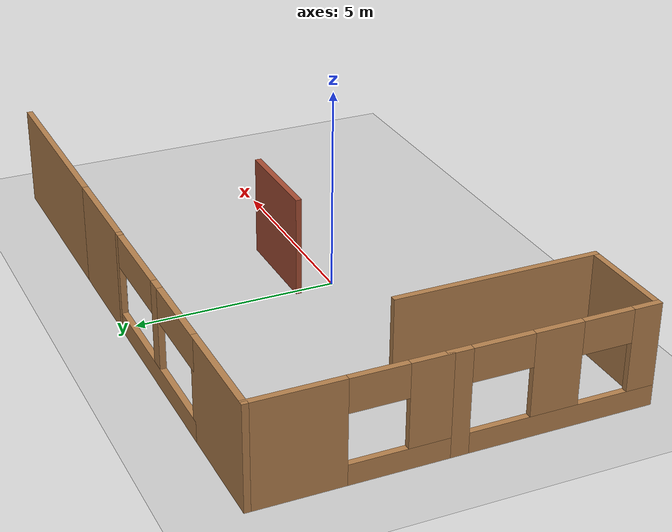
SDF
<sdf version="1.7">
 <world name="simple_house">
  <model name="ground_plane">
   <static>1</static>
   <link name="link">
    <collision name="collision">
     <geometry><plane><normal>0 0 1</normal><size>100 100</size></plane></geometry>
     <surface><friction><ode><mu>100</mu><mu2>50</mu2></ode></friction></surface>
    </collision>
    <visual name="visual">
     <cast_shadows>0</cast_shadows>
     <geometry><plane><normal>0 0 1</normal><size>100 100</size></plane></geometry>
     <material>
      <script><uri>file://media/materials/scripts/gazebo.material</uri><name>Gazebo/Grey</name></script>
     </material>
    </visual>
   </link>
  </model>
  <model name="Wall_81">
   <static>1</static>
   <link name="Wall_81_link">
    <pose>5.07752 5.2688 0 0 -0 3.14159</pose>
    <visual name="Wall_81_Visual">
     <pose>0 0 1.25 0 -0 0</pose>
     <geometry><box><size>5 0.15 2.5</size></box></geometry>
     <material>
      <script><uri>file://media/materials/scripts/gazebo.material</uri><name>Gazebo/Wood</name></script>
      <ambient>1 1 1 1</ambient>
      <diffuse>1 1 1 1</diffuse>
      <specular>0.2 0.2 0.2 1</specular>
      <emissive>0 0 0 1</emissive>
     </material>
    </visual>
    <collision name="Wall_81_Collision">
     <pose>0 0 1.25 0 -0 0</pose>
     <geometry><box><size>5 0.15 2.5</size></box></geometry>
     <surface>
      <friction>
       <ode><mu>1</mu><mu2>1</mu2><fdir1>0 0 0</fdir1><slip1>0</slip1><slip2>0</slip2></ode>
       <torsional>
        <coefficient>1</coefficient>
        <patch_radius>0</patch_radius>
        <surface_radius>0</surface_radius>
        <use_patch_radius>1</use_patch_radius>
        <ode><slip>0</slip></ode>
       </torsional>
      </friction>
      <bounce><restitution_coefficient>0</restitution_coefficient><threshold>1e+06</threshold></bounce>
      <contact>
       <collide_without_contact>0</collide_without_contact>
       <collide_without_contact_bitmask>1</collide_without_contact_bitmask>
       <collide_bitmask>1</collide_bitmask>
       <ode>
        <soft_cfm>0</soft_cfm>
        <soft_erp>0.2</soft_erp>
        <kp>1e+13</kp>
        <kd>1</kd>
        <max_vel>0.01</max_vel>
        <min_depth>0</min_depth>
       </ode>
       <bullet>
        <split_impulse>1</split_impulse>
        <split_impulse_penetration_threshold>-0.01</split_impulse_penetration_threshold>
        <soft_cfm>0</soft_cfm>
        <soft_erp>0.2</soft_erp>
        <kp>1e+13</kp>
        <kd>1</kd>
       </bullet>
      </contact>
     </surface>
    </collision>
   </link>
  </model>
  <model name="Wall_82">
   <static>1</static>
   <link name="Wall_82_link">
    <pose>1.25 5.26876 0 0 -0 3.14159</pose>
    <visual name="Wall_82_Visual">
     <pose>0 0 1.25 0 -0 0</pose>
     <geometry><box><size>2.75 0.15 2.5</size></box></geometry>
     <material>
      <script><uri>file://media/materials/scripts/gazebo.material</uri><name>Gazebo/Wood</name></script>
      <ambient>1 1 1 1</ambient>
      <diffuse>1 1 1 1</diffuse>
      <specular>0.2 0.2 0.2 1</specular>
      <emissive>0 0 0 1</emissive>
     </material>
    </visual>
    <collision name="Wall_82_Collision">
     <pose>0 0 1.25 0 -0 0</pose>
     <geometry><box><size>2.75 0.15 2.5</size></box></geometry>
     <surface>
      <friction>
       <ode><mu>1</mu><mu2>1</mu2><fdir1>0 0 0</fdir1><slip1>0</slip1><slip2>0</slip2></ode>
       <torsional>
        <coefficient>1</coefficient>
        <patch_radius>0</patch_radius>
        <surface_radius>0</surface_radius>
        <use_patch_radius>1</use_patch_radius>
        <ode><slip>0</slip></ode>
       </torsional>
      </friction>
      <bounce><restitution_coefficient>0</restitution_coefficient><threshold>1e+06</threshold></bounce>
      <contact>
       <collide_without_contact>0</collide_without_contact>
       <collide_without_contact_bitmask>1</collide_without_contact_bitmask>
       <collide_bitmask>1</collide_bitmask>
       <ode>
        <soft_cfm>0</soft_cfm>
        <soft_erp>0.2</soft_erp>
        <kp>1e+13</kp>
        <kd>1</kd>
        <max_vel>0.01</max_vel>
        <min_depth>0</min_depth>
       </ode>
       <bullet>
        <split_impulse>1</split_impulse>
        <split_impulse_penetration_threshold>-0.01</split_impulse_penetration_threshold>
        <soft_cfm>0</soft_cfm>
        <soft_erp>0.2</soft_erp>
        <kp>1e+13</kp>
        <kd>1</kd>
       </bullet>
      </contact>
     </surface>
    </collision>
   </link>
  </model>
  <model name="Wall_83">
   <static>1</static>
   <link name="Wall_83_link">
    <pose>-2.475 5.275 0 0 -0 3.14159</pose>
    <visual name="Wall_83_Visual_2">
     <pose>0.110246 0 1.5 0 -0 0</pose>
     <geometry><box><size>0.37052 0.15 2</size></box></geometry>
     <material>
      <script><uri>file://media/materials/scripts/gazebo.material</uri><name>Gazebo/Wood</name></script>
      <ambient>1 1 1 1</ambient>
      <diffuse>1 1 1 1</diffuse>
      <specular>0.2 0.2 0.2 1</specular>
      <emissive>0 0 0 1</emissive>
     </material>
    </visual>
    <visual name="Wall_83_Visual_6">
     <pose>1.39775 0 2.1 0 -0 0</pose>
     <geometry><box><size>2.20449 0.15 0.8</size></box></geometry>
     <material>
      <script><uri>file://media/materials/scripts/gazebo.material</uri><name>Gazebo/Wood</name></script>
      <ambient>1 1 1 1</ambient>
      <diffuse>1 1 1 1</diffuse>
      <specular>0.2 0.2 0.2 1</specular>
      <emissive>0 0 0 1</emissive>
     </material>
    </visual>
    <visual name="Wall_83_Visual_3">
     <pose>0.110246 0 1.5 0 -0 0</pose>
     <geometry><box><size>0.37052 0.15 2</size></box></geometry>
     <material>
      <script><uri>file://media/materials/scripts/gazebo.material</uri><name>Gazebo/Wood</name></script>
      <ambient>1 1 1 1</ambient>
      <diffuse>1 1 1 1</diffuse>
      <specular>0.2 0.2 0.2 1</specular>
      <emissive>0 0 0 1</emissive>
     </material>
    </visual>
    <visual name="Wall_83_Visual_1">
     <pose>0.080993 0 0.25 0 -0 0</pose>
     <geometry><box><size>4.83801 0.15 0.5</size></box></geometry>
     <material>
      <script><uri>file://media/materials/scripts/gazebo.material</uri><name>Gazebo/Wood</name></script>
      <ambient>1 1 1 1</ambient>
      <diffuse>1 1 1 1</diffuse>
      <specular>0.2 0.2 0.2 1</specular>
      <emissive>0 0 0 1</emissive>
     </material>
    </visual>
    <visual name="Wall_83_Visual_4">
     <pose>-1.20651 0 2.1 0 -0 0</pose>
     <geometry><box><size>2.263 0.15 0.8</size></box></geometry>
     <material>
      <script><uri>file://media/materials/scripts/gazebo.material</uri><name>Gazebo/Wood</name></script>
      <ambient>1 1 1 1</ambient>
      <diffuse>1 1 1 1</diffuse>
      <specular>0.2 0.2 0.2 1</specular>
      <emissive>0 0 0 1</emissive>
     </material>
    </visual>
    <visual name="Wall_83_Visual_5">
     <pose>1.39775 0 2.1 0 -0 0</pose>
     <geometry><box><size>2.20449 0.15 0.8</size></box></geometry>
     <material>
      <script><uri>file://media/materials/scripts/gazebo.material</uri><name>Gazebo/Wood</name></script>
      <ambient>1 1 1 1</ambient>
      <diffuse>1 1 1 1</diffuse>
      <specular>0.2 0.2 0.2 1</specular>
      <emissive>0 0 0 1</emissive>
     </material>
    </visual>
    <visual name="Wall_83_Visual_0">
     <pose>-2.41901 0 1.25 0 -0 0</pose>
     <geometry><box><size>0.161986 0.15 2.5</size></box></geometry>
     <material>
      <script><uri>file://media/materials/scripts/gazebo.material</uri><name>Gazebo/Wood</name></script>
      <ambient>1 1 1 1</ambient>
      <diffuse>1 1 1 1</diffuse>
      <specular>0.2 0.2 0.2 1</specular>
      <emissive>0 0 0 1</emissive>
     </material>
    </visual>
    <collision name="Wall_83_Collision_4">
     <pose>-1.20651 0 2.1 0 -0 0</pose>
     <geometry><box><size>2.263 0.15 0.8</size></box></geometry>
     <surface>
      <friction>
       <ode><mu>1</mu><mu2>1</mu2><fdir1>0 0 0</fdir1><slip1>0</slip1><slip2>0</slip2></ode>
       <torsional>
        <coefficient>1</coefficient>
        <patch_radius>0</patch_radius>
        <surface_radius>0</surface_radius>
        <use_patch_radius>1</use_patch_radius>
        <ode><slip>0</slip></ode>
       </torsional>
      </friction>
      <bounce><restitution_coefficient>0</restitution_coefficient><threshold>1e+06</threshold></bounce>
      <contact>
       <collide_without_contact>0</collide_without_contact>
       <collide_without_contact_bitmask>1</collide_without_contact_bitmask>
       <collide_bitmask>1</collide_bitmask>
       <ode>
        <soft_cfm>0</soft_cfm>
        <soft_erp>0.2</soft_erp>
        <kp>1e+13</kp>
        <kd>1</kd>
        <max_vel>0.01</max_vel>
        <min_depth>0</min_depth>
       </ode>
       <bullet>
        <split_impulse>1</split_impulse>
        <split_impulse_penetration_threshold>-0.01</split_impulse_penetration_threshold>
        <soft_cfm>0</soft_cfm>
        <soft_erp>0.2</soft_erp>
        <kp>1e+13</kp>
        <kd>1</kd>
       </bullet>
      </contact>
     </surface>
    </collision>
    <collision name="Wall_83_Collision_2">
     <pose>0.110246 0 1.5 0 -0 0</pose>
     <geometry><box><size>0.37052 0.15 2</size></box></geometry>
     <surface>
      <friction>
       <ode><mu>1</mu><mu2>1</mu2><fdir1>0 0 0</fdir1><slip1>0</slip1><slip2>0</slip2></ode>
       <torsional>
        <coefficient>1</coefficient>
        <patch_radius>0</patch_radius>
        <surface_radius>0</surface_radius>
        <use_patch_radius>1</use_patch_radius>
        <ode><slip>0</slip></ode>
       </torsional>
      </friction>
      <bounce><restitution_coefficient>0</restitution_coefficient><threshold>1e+06</threshold></bounce>
      <contact>
       <collide_without_contact>0</collide_without_contact>
       <collide_without_contact_bitmask>1</collide_without_contact_bitmask>
       <collide_bitmask>1</collide_bitmask>
       <ode>
        <soft_cfm>0</soft_cfm>
        <soft_erp>0.2</soft_erp>
        <kp>1e+13</kp>
        <kd>1</kd>
        <max_vel>0.01</max_vel>
        <min_depth>0</min_depth>
       </ode>
       <bullet>
        <split_impulse>1</split_impulse>
        <split_impulse_penetration_threshold>-0.01</split_impulse_penetration_threshold>
        <soft_cfm>0</soft_cfm>
        <soft_erp>0.2</soft_erp>
        <kp>1e+13</kp>
        <kd>1</kd>
       </bullet>
      </contact>
     </surface>
    </collision>
    <collision name="Wall_83_Collision_6">
     <pose>1.39775 0 2.1 0 -0 0</pose>
     <geometry><box><size>2.20449 0.15 0.8</size></box></geometry>
     <surface>
      <friction>
       <ode><mu>1</mu><mu2>1</mu2><fdir1>0 0 0</fdir1><slip1>0</slip1><slip2>0</slip2></ode>
       <torsional>
        <coefficient>1</coefficient>
        <patch_radius>0</patch_radius>
        <surface_radius>0</surface_radius>
        <use_patch_radius>1</use_patch_radius>
        <ode><slip>0</slip></ode>
       </torsional>
      </friction>
      <bounce><restitution_coefficient>0</restitution_coefficient><threshold>1e+06</threshold></bounce>
      <contact>
       <collide_without_contact>0</collide_without_contact>
       <collide_without_contact_bitmask>1</collide_without_contact_bitmask>
       <collide_bitmask>1</collide_bitmask>
       <ode>
        <soft_cfm>0</soft_cfm>
        <soft_erp>0.2</soft_erp>
        <kp>1e+13</kp>
        <kd>1</kd>
        <max_vel>0.01</max_vel>
        <min_depth>0</min_depth>
       </ode>
       <bullet>
        <split_impulse>1</split_impulse>
        <split_impulse_penetration_threshold>-0.01</split_impulse_penetration_threshold>
        <soft_cfm>0</soft_cfm>
        <soft_erp>0.2</soft_erp>
        <kp>1e+13</kp>
        <kd>1</kd>
       </bullet>
      </contact>
     </surface>
    </collision>
    <collision name="Wall_83_Collision_0">
     <pose>-2.41901 0 1.25 0 -0 0</pose>
     <geometry><box><size>0.161986 0.15 2.5</size></box></geometry>
     <surface>
      <friction>
       <ode><mu>1</mu><mu2>1</mu2><fdir1>0 0 0</fdir1><slip1>0</slip1><slip2>0</slip2></ode>
       <torsional>
        <coefficient>1</coefficient>
        <patch_radius>0</patch_radius>
        <surface_radius>0</surface_radius>
        <use_patch_radius>1</use_patch_radius>
        <ode><slip>0</slip></ode>
       </torsional>
      </friction>
      <bounce><restitution_coefficient>0</restitution_coefficient><threshold>1e+06</threshold></bounce>
      <contact>
       <collide_without_contact>0</collide_without_contact>
       <collide_without_contact_bitmask>1</collide_without_contact_bitmask>
       <collide_bitmask>1</collide_bitmask>
       <ode>
        <soft_cfm>0</soft_cfm>
        <soft_erp>0.2</soft_erp>
        <kp>1e+13</kp>
        <kd>1</kd>
        <max_vel>0.01</max_vel>
        <min_depth>0</min_depth>
       </ode>
       <bullet>
        <split_impulse>1</split_impulse>
        <split_impulse_penetration_threshold>-0.01</split_impulse_penetration_threshold>
        <soft_cfm>0</soft_cfm>
        <soft_erp>0.2</soft_erp>
        <kp>1e+13</kp>
        <kd>1</kd>
       </bullet>
      </contact>
     </surface>
    </collision>
    <collision name="Wall_83_Collision_1">
     <pose>0.080993 0 0.25 0 -0 0</pose>
     <geometry><box><size>4.83801 0.15 0.5</size></box></geometry>
     <surface>
      <friction>
       <ode><mu>1</mu><mu2>1</mu2><fdir1>0 0 0</fdir1><slip1>0</slip1><slip2>0</slip2></ode>
       <torsional>
        <coefficient>1</coefficient>
        <patch_radius>0</patch_radius>
        <surface_radius>0</surface_radius>
        <use_patch_radius>1</use_patch_radius>
        <ode><slip>0</slip></ode>
       </torsional>
      </friction>
      <bounce><restitution_coefficient>0</restitution_coefficient><threshold>1e+06</threshold></bounce>
      <contact>
       <collide_without_contact>0</collide_without_contact>
       <collide_without_contact_bitmask>1</collide_without_contact_bitmask>
       <collide_bitmask>1</collide_bitmask>
       <ode>
        <soft_cfm>0</soft_cfm>
        <soft_erp>0.2</soft_erp>
        <kp>1e+13</kp>
        <kd>1</kd>
        <max_vel>0.01</max_vel>
        <min_depth>0</min_depth>
       </ode>
       <bullet>
        <split_impulse>1</split_impulse>
        <split_impulse_penetration_threshold>-0.01</split_impulse_penetration_threshold>
        <soft_cfm>0</soft_cfm>
        <soft_erp>0.2</soft_erp>
        <kp>1e+13</kp>
        <kd>1</kd>
       </bullet>
      </contact>
     </surface>
    </collision>
    <collision name="Wall_83_Collision_3">
     <pose>0.110246 0 1.5 0 -0 0</pose>
     <geometry><box><size>0.37052 0.15 2</size></box></geometry>
     <surface>
      <friction>
       <ode><mu>1</mu><mu2>1</mu2><fdir1>0 0 0</fdir1><slip1>0</slip1><slip2>0</slip2></ode>
       <torsional>
        <coefficient>1</coefficient>
        <patch_radius>0</patch_radius>
        <surface_radius>0</surface_radius>
        <use_patch_radius>1</use_patch_radius>
        <ode><slip>0</slip></ode>
       </torsional>
      </friction>
      <bounce><restitution_coefficient>0</restitution_coefficient><threshold>1e+06</threshold></bounce>
      <contact>
       <collide_without_contact>0</collide_without_contact>
       <collide_without_contact_bitmask>1</collide_without_contact_bitmask>
       <collide_bitmask>1</collide_bitmask>
       <ode>
        <soft_cfm>0</soft_cfm>
        <soft_erp>0.2</soft_erp>
        <kp>1e+13</kp>
        <kd>1</kd>
        <max_vel>0.01</max_vel>
        <min_depth>0</min_depth>
       </ode>
       <bullet>
        <split_impulse>1</split_impulse>
        <split_impulse_penetration_threshold>-0.01</split_impulse_penetration_threshold>
        <soft_cfm>0</soft_cfm>
        <soft_erp>0.2</soft_erp>
        <kp>1e+13</kp>
        <kd>1</kd>
       </bullet>
      </contact>
     </surface>
    </collision>
    <collision name="Wall_83_Collision_5">
     <pose>1.39775 0 2.1 0 -0 0</pose>
     <geometry><box><size>2.20449 0.15 0.8</size></box></geometry>
     <surface>
      <friction>
       <ode><mu>1</mu><mu2>1</mu2><fdir1>0 0 0</fdir1><slip1>0</slip1><slip2>0</slip2></ode>
       <torsional>
        <coefficient>1</coefficient>
        <patch_radius>0</patch_radius>
        <surface_radius>0</surface_radius>
        <use_patch_radius>1</use_patch_radius>
        <ode><slip>0</slip></ode>
       </torsional>
      </friction>
      <bounce><restitution_coefficient>0</restitution_coefficient><threshold>1e+06</threshold></bounce>
      <contact>
       <collide_without_contact>0</collide_without_contact>
       <collide_without_contact_bitmask>1</collide_without_contact_bitmask>
       <collide_bitmask>1</collide_bitmask>
       <ode>
        <soft_cfm>0</soft_cfm>
        <soft_erp>0.2</soft_erp>
        <kp>1e+13</kp>
        <kd>1</kd>
        <max_vel>0.01</max_vel>
        <min_depth>0</min_depth>
       </ode>
       <bullet>
        <split_impulse>1</split_impulse>
        <split_impulse_penetration_threshold>-0.01</split_impulse_penetration_threshold>
        <soft_cfm>0</soft_cfm>
        <soft_erp>0.2</soft_erp>
        <kp>1e+13</kp>
        <kd>1</kd>
       </bullet>
      </contact>
     </surface>
    </collision>
   </link>
  </model>
  <model name="Wall_84">
   <static>1</static>
   <link name="Wall_84_link">
    <pose>-6.2 5.275 0 0 -0 3.14159</pose>
    <visual name="Wall_84_Visual">
     <pose>0 0 1.25 0 -0 0</pose>
     <geometry><box><size>2.75 0.15 2.5</size></box></geometry>
     <material>
      <script><uri>file://media/materials/scripts/gazebo.material</uri><name>Gazebo/Wood</name></script>
      <ambient>1 1 1 1</ambient>
      <diffuse>1 1 1 1</diffuse>
      <specular>0.2 0.2 0.2 1</specular>
      <emissive>0 0 0 1</emissive>
     </material>
    </visual>
    <collision name="Wall_84_Collision">
     <pose>0 0 1.25 0 -0 0</pose>
     <geometry><box><size>2.75 0.15 2.5</size></box></geometry>
     <surface>
      <friction>
       <ode><mu>1</mu><mu2>1</mu2><fdir1>0 0 0</fdir1><slip1>0</slip1><slip2>0</slip2></ode>
       <torsional>
        <coefficient>1</coefficient>
        <patch_radius>0</patch_radius>
        <surface_radius>0</surface_radius>
        <use_patch_radius>1</use_patch_radius>
        <ode><slip>0</slip></ode>
       </torsional>
      </friction>
      <bounce><restitution_coefficient>0</restitution_coefficient><threshold>1e+06</threshold></bounce>
      <contact>
       <collide_without_contact>0</collide_without_contact>
       <collide_without_contact_bitmask>1</collide_without_contact_bitmask>
       <collide_bitmask>1</collide_bitmask>
       <ode>
        <soft_cfm>0</soft_cfm>
        <soft_erp>0.2</soft_erp>
        <kp>1e+13</kp>
        <kd>1</kd>
        <max_vel>0.01</max_vel>
        <min_depth>0</min_depth>
       </ode>
       <bullet>
        <split_impulse>1</split_impulse>
        <split_impulse_penetration_threshold>-0.01</split_impulse_penetration_threshold>
        <soft_cfm>0</soft_cfm>
        <soft_erp>0.2</soft_erp>
        <kp>1e+13</kp>
        <kd>1</kd>
       </bullet>
      </contact>
     </surface>
    </collision>
   </link>
  </model>
  <model name="Wall_85">
   <static>1</static>
   <link name="Wall_85_link">
    <pose>-7.5 3.1 0 0 0 -1.5708</pose>
    <visual name="Wall_85_Visual_3">
     <pose>0.62212 0 2.1 0 -0 0</pose>
     <geometry><box><size>1.332 0.15 0.8</size></box></geometry>
     <material>
      <script><uri>file://media/materials/scripts/gazebo.material</uri><name>Gazebo/Wood</name></script>
      <ambient>1 1 1 1</ambient>
      <diffuse>1 1 1 1</diffuse>
      <specular>0.2 0.2 0.2 1</specular>
      <emissive>0 0 0 1</emissive>
     </material>
    </visual>
    <visual name="Wall_85_Visual_2">
     <pose>1.76906 0 1.5 0 -0 0</pose>
     <geometry><box><size>0.96188 0.15 2</size></box></geometry>
     <material>
      <script><uri>file://media/materials/scripts/gazebo.material</uri><name>Gazebo/Wood</name></script>
      <ambient>1 1 1 1</ambient>
      <diffuse>1 1 1 1</diffuse>
      <specular>0.2 0.2 0.2 1</specular>
      <emissive>0 0 0 1</emissive>
     </material>
    </visual>
    <visual name="Wall_85_Visual_0">
     <pose>-1.14694 0 1.25 0 -0 0</pose>
     <geometry><box><size>2.20612 0.15 2.5</size></box></geometry>
     <material>
      <script><uri>file://media/materials/scripts/gazebo.material</uri><name>Gazebo/Wood</name></script>
      <ambient>1 1 1 1</ambient>
      <diffuse>1 1 1 1</diffuse>
      <specular>0.2 0.2 0.2 1</specular>
      <emissive>0 0 0 1</emissive>
     </material>
    </visual>
    <visual name="Wall_85_Visual_1">
     <pose>1.10306 0 0.25 0 -0 0</pose>
     <geometry><box><size>2.29388 0.15 0.5</size></box></geometry>
     <material>
      <script><uri>file://media/materials/scripts/gazebo.material</uri><name>Gazebo/Wood</name></script>
      <ambient>1 1 1 1</ambient>
      <diffuse>1 1 1 1</diffuse>
      <specular>0.2 0.2 0.2 1</specular>
      <emissive>0 0 0 1</emissive>
     </material>
    </visual>
    <collision name="Wall_85_Collision_3">
     <pose>0.62212 0 2.1 0 -0 0</pose>
     <geometry><box><size>1.332 0.15 0.8</size></box></geometry>
     <surface>
      <friction>
       <ode><mu>1</mu><mu2>1</mu2><fdir1>0 0 0</fdir1><slip1>0</slip1><slip2>0</slip2></ode>
       <torsional>
        <coefficient>1</coefficient>
        <patch_radius>0</patch_radius>
        <surface_radius>0</surface_radius>
        <use_patch_radius>1</use_patch_radius>
        <ode><slip>0</slip></ode>
       </torsional>
      </friction>
      <bounce><restitution_coefficient>0</restitution_coefficient><threshold>1e+06</threshold></bounce>
      <contact>
       <collide_without_contact>0</collide_without_contact>
       <collide_without_contact_bitmask>1</collide_without_contact_bitmask>
       <collide_bitmask>1</collide_bitmask>
       <ode>
        <soft_cfm>0</soft_cfm>
        <soft_erp>0.2</soft_erp>
        <kp>1e+13</kp>
        <kd>1</kd>
        <max_vel>0.01</max_vel>
        <min_depth>0</min_depth>
       </ode>
       <bullet>
        <split_impulse>1</split_impulse>
        <split_impulse_penetration_threshold>-0.01</split_impulse_penetration_threshold>
        <soft_cfm>0</soft_cfm>
        <soft_erp>0.2</soft_erp>
        <kp>1e+13</kp>
        <kd>1</kd>
       </bullet>
      </contact>
     </surface>
    </collision>
    <collision name="Wall_85_Collision_2">
     <pose>1.76906 0 1.5 0 -0 0</pose>
     <geometry><box><size>0.96188 0.15 2</size></box></geometry>
     <surface>
      <friction>
       <ode><mu>1</mu><mu2>1</mu2><fdir1>0 0 0</fdir1><slip1>0</slip1><slip2>0</slip2></ode>
       <torsional>
        <coefficient>1</coefficient>
        <patch_radius>0</patch_radius>
        <surface_radius>0</surface_radius>
        <use_patch_radius>1</use_patch_radius>
        <ode><slip>0</slip></ode>
       </torsional>
      </friction>
      <bounce><restitution_coefficient>0</restitution_coefficient><threshold>1e+06</threshold></bounce>
      <contact>
       <collide_without_contact>0</collide_without_contact>
       <collide_without_contact_bitmask>1</collide_without_contact_bitmask>
       <collide_bitmask>1</collide_bitmask>
       <ode>
        <soft_cfm>0</soft_cfm>
        <soft_erp>0.2</soft_erp>
        <kp>1e+13</kp>
        <kd>1</kd>
        <max_vel>0.01</max_vel>
        <min_depth>0</min_depth>
       </ode>
       <bullet>
        <split_impulse>1</split_impulse>
        <split_impulse_penetration_threshold>-0.01</split_impulse_penetration_threshold>
        <soft_cfm>0</soft_cfm>
        <soft_erp>0.2</soft_erp>
        <kp>1e+13</kp>
        <kd>1</kd>
       </bullet>
      </contact>
     </surface>
    </collision>
    <collision name="Wall_85_Collision_1">
     <pose>1.10306 0 0.25 0 -0 0</pose>
     <geometry><box><size>2.29388 0.15 0.5</size></box></geometry>
     <surface>
      <friction>
       <ode><mu>1</mu><mu2>1</mu2><fdir1>0 0 0</fdir1><slip1>0</slip1><slip2>0</slip2></ode>
       <torsional>
        <coefficient>1</coefficient>
        <patch_radius>0</patch_radius>
        <surface_radius>0</surface_radius>
        <use_patch_radius>1</use_patch_radius>
        <ode><slip>0</slip></ode>
       </torsional>
      </friction>
      <bounce><restitution_coefficient>0</restitution_coefficient><threshold>1e+06</threshold></bounce>
      <contact>
       <collide_without_contact>0</collide_without_contact>
       <collide_without_contact_bitmask>1</collide_without_contact_bitmask>
       <collide_bitmask>1</collide_bitmask>
       <ode>
        <soft_cfm>0</soft_cfm>
        <soft_erp>0.2</soft_erp>
        <kp>1e+13</kp>
        <kd>1</kd>
        <max_vel>0.01</max_vel>
        <min_depth>0</min_depth>
       </ode>
       <bullet>
        <split_impulse>1</split_impulse>
        <split_impulse_penetration_threshold>-0.01</split_impulse_penetration_threshold>
        <soft_cfm>0</soft_cfm>
        <soft_erp>0.2</soft_erp>
        <kp>1e+13</kp>
        <kd>1</kd>
       </bullet>
      </contact>
     </surface>
    </collision>
    <collision name="Wall_85_Collision_0">
     <pose>-1.14694 0 1.25 0 -0 0</pose>
     <geometry><box><size>2.20612 0.15 2.5</size></box></geometry>
     <surface>
      <friction>
       <ode><mu>1</mu><mu2>1</mu2><fdir1>0 0 0</fdir1><slip1>0</slip1><slip2>0</slip2></ode>
       <torsional>
        <coefficient>1</coefficient>
        <patch_radius>0</patch_radius>
        <surface_radius>0</surface_radius>
        <use_patch_radius>1</use_patch_radius>
        <ode><slip>0</slip></ode>
       </torsional>
      </friction>
      <bounce><restitution_coefficient>0</restitution_coefficient><threshold>1e+06</threshold></bounce>
      <contact>
       <collide_without_contact>0</collide_without_contact>
       <collide_without_contact_bitmask>1</collide_without_contact_bitmask>
       <collide_bitmask>1</collide_bitmask>
       <ode>
        <soft_cfm>0</soft_cfm>
        <soft_erp>0.2</soft_erp>
        <kp>1e+13</kp>
        <kd>1</kd>
        <max_vel>0.01</max_vel>
        <min_depth>0</min_depth>
       </ode>
       <bullet>
        <split_impulse>1</split_impulse>
        <split_impulse_penetration_threshold>-0.01</split_impulse_penetration_threshold>
        <soft_cfm>0</soft_cfm>
        <soft_erp>0.2</soft_erp>
        <kp>1e+13</kp>
        <kd>1</kd>
       </bullet>
      </contact>
     </surface>
    </collision>
   </link>
  </model>
  <model name="Wall_86">
   <static>1</static>
   <link name="Wall_86_link">
    <pose>-7.5 -1.5 0 0 0 -1.5708</pose>
    <visual name="Wall_86_Visual_1">
     <pose>0.28462 0 0.25 0 -0 0</pose>
     <geometry><box><size>4.43076 0.15 0.5</size></box></geometry>
     <material>
      <script><uri>file://media/materials/scripts/gazebo.material</uri><name>Gazebo/Wood</name></script>
      <ambient>1 1 1 1</ambient>
      <diffuse>1 1 1 1</diffuse>
      <specular>0.2 0.2 0.2 1</specular>
      <emissive>0 0 0 1</emissive>
     </material>
    </visual>
    <visual name="Wall_86_Visual_4">
     <pose>-1.22476 0 2.1 0 -0 0</pose>
     <geometry><box><size>1.412 0.15 0.8</size></box></geometry>
     <material>
      <script><uri>file://media/materials/scripts/gazebo.material</uri><name>Gazebo/Wood</name></script>
      <ambient>1 1 1 1</ambient>
      <diffuse>1 1 1 1</diffuse>
      <specular>0.2 0.2 0.2 1</specular>
      <emissive>0 0 0 1</emissive>
     </material>
    </visual>
    <visual name="Wall_86_Visual_0">
     <pose>-2.21538 0 1.25 0 -0 0</pose>
     <geometry><box><size>0.569241 0.15 2.5</size></box></geometry>
     <material>
      <script><uri>file://media/materials/scripts/gazebo.material</uri><name>Gazebo/Wood</name></script>
      <ambient>1 1 1 1</ambient>
      <diffuse>1 1 1 1</diffuse>
      <specular>0.2 0.2 0.2 1</specular>
      <emissive>0 0 0 1</emissive>
     </material>
    </visual>
    <visual name="Wall_86_Visual_5">
     <pose>1.22246 0 2.1 0 -0 0</pose>
     <geometry><box><size>1.199 0.15 0.8</size></box></geometry>
     <material>
      <script><uri>file://media/materials/scripts/gazebo.material</uri><name>Gazebo/Wood</name></script>
      <ambient>1 1 1 1</ambient>
      <diffuse>1 1 1 1</diffuse>
      <specular>0.2 0.2 0.2 1</specular>
      <emissive>0 0 0 1</emissive>
     </material>
    </visual>
    <visual name="Wall_86_Visual_2">
     <pose>0.0521 0 1.5 0 -0 0</pose>
     <geometry><box><size>1.14172 0.15 2</size></box></geometry>
     <material>
      <script><uri>file://media/materials/scripts/gazebo.material</uri><name>Gazebo/Wood</name></script>
      <ambient>1 1 1 1</ambient>
      <diffuse>1 1 1 1</diffuse>
      <specular>0.2 0.2 0.2 1</specular>
      <emissive>0 0 0 1</emissive>
     </material>
    </visual>
    <visual name="Wall_86_Visual_3">
     <pose>2.16098 0 1.5 0 -0 0</pose>
     <geometry><box><size>0.678041 0.15 2</size></box></geometry>
     <material>
      <script><uri>file://media/materials/scripts/gazebo.material</uri><name>Gazebo/Wood</name></script>
      <ambient>1 1 1 1</ambient>
      <diffuse>1 1 1 1</diffuse>
      <specular>0.2 0.2 0.2 1</specular>
      <emissive>0 0 0 1</emissive>
     </material>
    </visual>
    <collision name="Wall_86_Collision_4">
     <pose>-1.22476 0 2.1 0 -0 0</pose>
     <geometry><box><size>1.412 0.15 0.8</size></box></geometry>
     <surface>
      <friction>
       <ode><mu>1</mu><mu2>1</mu2><fdir1>0 0 0</fdir1><slip1>0</slip1><slip2>0</slip2></ode>
       <torsional>
        <coefficient>1</coefficient>
        <patch_radius>0</patch_radius>
        <surface_radius>0</surface_radius>
        <use_patch_radius>1</use_patch_radius>
        <ode><slip>0</slip></ode>
       </torsional>
      </friction>
      <bounce><restitution_coefficient>0</restitution_coefficient><threshold>1e+06</threshold></bounce>
      <contact>
       <collide_without_contact>0</collide_without_contact>
       <collide_without_contact_bitmask>1</collide_without_contact_bitmask>
       <collide_bitmask>1</collide_bitmask>
       <ode>
        <soft_cfm>0</soft_cfm>
        <soft_erp>0.2</soft_erp>
        <kp>1e+13</kp>
        <kd>1</kd>
        <max_vel>0.01</max_vel>
        <min_depth>0</min_depth>
       </ode>
       <bullet>
        <split_impulse>1</split_impulse>
        <split_impulse_penetration_threshold>-0.01</split_impulse_penetration_threshold>
        <soft_cfm>0</soft_cfm>
        <soft_erp>0.2</soft_erp>
        <kp>1e+13</kp>
        <kd>1</kd>
       </bullet>
      </contact>
     </surface>
    </collision>
    <collision name="Wall_86_Collision_5">
     <pose>1.22246 0 2.1 0 -0 0</pose>
     <geometry><box><size>1.199 0.15 0.8</size></box></geometry>
     <surface>
      <friction>
       <ode><mu>1</mu><mu2>1</mu2><fdir1>0 0 0</fdir1><slip1>0</slip1><slip2>0</slip2></ode>
       <torsional>
        <coefficient>1</coefficient>
        <patch_radius>0</patch_radius>
        <surface_radius>0</surface_radius>
        <use_patch_radius>1</use_patch_radius>
        <ode><slip>0</slip></ode>
       </torsional>
      </friction>
      <bounce><restitution_coefficient>0</restitution_coefficient><threshold>1e+06</threshold></bounce>
      <contact>
       <collide_without_contact>0</collide_without_contact>
       <collide_without_contact_bitmask>1</collide_without_contact_bitmask>
       <collide_bitmask>1</collide_bitmask>
       <ode>
        <soft_cfm>0</soft_cfm>
        <soft_erp>0.2</soft_erp>
        <kp>1e+13</kp>
        <kd>1</kd>
        <max_vel>0.01</max_vel>
        <min_depth>0</min_depth>
       </ode>
       <bullet>
        <split_impulse>1</split_impulse>
        <split_impulse_penetration_threshold>-0.01</split_impulse_penetration_threshold>
        <soft_cfm>0</soft_cfm>
        <soft_erp>0.2</soft_erp>
        <kp>1e+13</kp>
        <kd>1</kd>
       </bullet>
      </contact>
     </surface>
    </collision>
    <collision name="Wall_86_Collision_2">
     <pose>0.0521 0 1.5 0 -0 0</pose>
     <geometry><box><size>1.14172 0.15 2</size></box></geometry>
     <surface>
      <friction>
       <ode><mu>1</mu><mu2>1</mu2><fdir1>0 0 0</fdir1><slip1>0</slip1><slip2>0</slip2></ode>
       <torsional>
        <coefficient>1</coefficient>
        <patch_radius>0</patch_radius>
        <surface_radius>0</surface_radius>
        <use_patch_radius>1</use_patch_radius>
        <ode><slip>0</slip></ode>
       </torsional>
      </friction>
      <bounce><restitution_coefficient>0</restitution_coefficient><threshold>1e+06</threshold></bounce>
      <contact>
       <collide_without_contact>0</collide_without_contact>
       <collide_without_contact_bitmask>1</collide_without_contact_bitmask>
       <collide_bitmask>1</collide_bitmask>
       <ode>
        <soft_cfm>0</soft_cfm>
        <soft_erp>0.2</soft_erp>
        <kp>1e+13</kp>
        <kd>1</kd>
        <max_vel>0.01</max_vel>
        <min_depth>0</min_depth>
       </ode>
       <bullet>
        <split_impulse>1</split_impulse>
        <split_impulse_penetration_threshold>-0.01</split_impulse_penetration_threshold>
        <soft_cfm>0</soft_cfm>
        <soft_erp>0.2</soft_erp>
        <kp>1e+13</kp>
        <kd>1</kd>
       </bullet>
      </contact>
     </surface>
    </collision>
    <collision name="Wall_86_Collision_1">
     <pose>0.28462 0 0.25 0 -0 0</pose>
     <geometry><box><size>4.43076 0.15 0.5</size></box></geometry>
     <surface>
      <friction>
       <ode><mu>1</mu><mu2>1</mu2><fdir1>0 0 0</fdir1><slip1>0</slip1><slip2>0</slip2></ode>
       <torsional>
        <coefficient>1</coefficient>
        <patch_radius>0</patch_radius>
        <surface_radius>0</surface_radius>
        <use_patch_radius>1</use_patch_radius>
        <ode><slip>0</slip></ode>
       </torsional>
      </friction>
      <bounce><restitution_coefficient>0</restitution_coefficient><threshold>1e+06</threshold></bounce>
      <contact>
       <collide_without_contact>0</collide_without_contact>
       <collide_without_contact_bitmask>1</collide_without_contact_bitmask>
       <collide_bitmask>1</collide_bitmask>
       <ode>
        <soft_cfm>0</soft_cfm>
        <soft_erp>0.2</soft_erp>
        <kp>1e+13</kp>
        <kd>1</kd>
        <max_vel>0.01</max_vel>
        <min_depth>0</min_depth>
       </ode>
       <bullet>
        <split_impulse>1</split_impulse>
        <split_impulse_penetration_threshold>-0.01</split_impulse_penetration_threshold>
        <soft_cfm>0</soft_cfm>
        <soft_erp>0.2</soft_erp>
        <kp>1e+13</kp>
        <kd>1</kd>
       </bullet>
      </contact>
     </surface>
    </collision>
    <collision name="Wall_86_Collision_3">
     <pose>2.16098 0 1.5 0 -0 0</pose>
     <geometry><box><size>0.678041 0.15 2</size></box></geometry>
     <surface>
      <friction>
       <ode><mu>1</mu><mu2>1</mu2><fdir1>0 0 0</fdir1><slip1>0</slip1><slip2>0</slip2></ode>
       <torsional>
        <coefficient>1</coefficient>
        <patch_radius>0</patch_radius>
        <surface_radius>0</surface_radius>
        <use_patch_radius>1</use_patch_radius>
        <ode><slip>0</slip></ode>
       </torsional>
      </friction>
      <bounce><restitution_coefficient>0</restitution_coefficient><threshold>1e+06</threshold></bounce>
      <contact>
       <collide_without_contact>0</collide_without_contact>
       <collide_without_contact_bitmask>1</collide_without_contact_bitmask>
       <collide_bitmask>1</collide_bitmask>
       <ode>
        <soft_cfm>0</soft_cfm>
        <soft_erp>0.2</soft_erp>
        <kp>1e+13</kp>
        <kd>1</kd>
        <max_vel>0.01</max_vel>
        <min_depth>0</min_depth>
       </ode>
       <bullet>
        <split_impulse>1</split_impulse>
        <split_impulse_penetration_threshold>-0.01</split_impulse_penetration_threshold>
        <soft_cfm>0</soft_cfm>
        <soft_erp>0.2</soft_erp>
        <kp>1e+13</kp>
        <kd>1</kd>
       </bullet>
      </contact>
     </surface>
    </collision>
    <collision name="Wall_86_Collision_0">
     <pose>-2.21538 0 1.25 0 -0 0</pose>
     <geometry><box><size>0.569241 0.15 2.5</size></box></geometry>
     <surface>
      <friction>
       <ode><mu>1</mu><mu2>1</mu2><fdir1>0 0 0</fdir1><slip1>0</slip1><slip2>0</slip2></ode>
       <torsional>
        <coefficient>1</coefficient>
        <patch_radius>0</patch_radius>
        <surface_radius>0</surface_radius>
        <use_patch_radius>1</use_patch_radius>
        <ode><slip>0</slip></ode>
       </torsional>
      </friction>
      <bounce><restitution_coefficient>0</restitution_coefficient><threshold>1e+06</threshold></bounce>
      <contact>
       <collide_without_contact>0</collide_without_contact>
       <collide_without_contact_bitmask>1</collide_without_contact_bitmask>
       <collide_bitmask>1</collide_bitmask>
       <ode>
        <soft_cfm>0</soft_cfm>
        <soft_erp>0.2</soft_erp>
        <kp>1e+13</kp>
        <kd>1</kd>
        <max_vel>0.01</max_vel>
        <min_depth>0</min_depth>
       </ode>
       <bullet>
        <split_impulse>1</split_impulse>
        <split_impulse_penetration_threshold>-0.01</split_impulse_penetration_threshold>
        <soft_cfm>0</soft_cfm>
        <soft_erp>0.2</soft_erp>
        <kp>1e+13</kp>
        <kd>1</kd>
       </bullet>
      </contact>
     </surface>
    </collision>
   </link>
  </model>
  <model name="Wall_87">
   <static>1</static>
   <link name="Wall_87_link">
    <pose>-6.325 -3.925 0 0 -0 0</pose>
    <visual name="Wall_87_Visual">
     <pose>0 0 1.25 0 -0 0</pose>
     <geometry><box><size>2.5 0.15 2.5</size></box></geometry>
     <material>
      <script><uri>file://media/materials/scripts/gazebo.material</uri><name>Gazebo/Wood</name></script>
      <ambient>1 1 1 1</ambient>
      <diffuse>1 1 1 1</diffuse>
      <specular>0.2 0.2 0.2 1</specular>
      <emissive>0 0 0 1</emissive>
     </material>
    </visual>
    <collision name="Wall_87_Collision">
     <pose>0 0 1.25 0 -0 0</pose>
     <geometry><box><size>2.5 0.15 2.5</size></box></geometry>
     <surface>
      <friction>
       <ode><mu>1</mu><mu2>1</mu2><fdir1>0 0 0</fdir1><slip1>0</slip1><slip2>0</slip2></ode>
       <torsional>
        <coefficient>1</coefficient>
        <patch_radius>0</patch_radius>
        <surface_radius>0</surface_radius>
        <use_patch_radius>1</use_patch_radius>
        <ode><slip>0</slip></ode>
       </torsional>
      </friction>
      <bounce><restitution_coefficient>0</restitution_coefficient><threshold>1e+06</threshold></bounce>
      <contact>
       <collide_without_contact>0</collide_without_contact>
       <collide_without_contact_bitmask>1</collide_without_contact_bitmask>
       <collide_bitmask>1</collide_bitmask>
       <ode>
        <soft_cfm>0</soft_cfm>
        <soft_erp>0.2</soft_erp>
        <kp>1e+13</kp>
        <kd>1</kd>
        <max_vel>0.01</max_vel>
        <min_depth>0</min_depth>
       </ode>
       <bullet>
        <split_impulse>1</split_impulse>
        <split_impulse_penetration_threshold>-0.01</split_impulse_penetration_threshold>
        <soft_cfm>0</soft_cfm>
        <soft_erp>0.2</soft_erp>
        <kp>1e+13</kp>
        <kd>1</kd>
       </bullet>
      </contact>
     </surface>
    </collision>
   </link>
  </model>
  <model name="Wall_88">
   <static>1</static>
   <link name="Wall_88_link">
    <pose>-5.15151 -1.49625 0 0 -0 1.5708</pose>
    <visual name="Wall_88_Visual">
     <pose>0 0 1.25 0 -0 0</pose>
     <geometry><box><size>5 0.15 2.5</size></box></geometry>
     <material>
      <script><uri>file://media/materials/scripts/gazebo.material</uri><name>Gazebo/Wood</name></script>
      <ambient>1 1 1 1</ambient>
      <diffuse>1 1 1 1</diffuse>
      <specular>0.2 0.2 0.2 1</specular>
      <emissive>0 0 0 1</emissive>
     </material>
    </visual>
    <collision name="Wall_88_Collision">
     <pose>0 0 1.25 0 -0 0</pose>
     <geometry><box><size>5 0.15 2.5</size></box></geometry>
     <surface>
      <friction>
       <ode><mu>1</mu><mu2>1</mu2><fdir1>0 0 0</fdir1><slip1>0</slip1><slip2>0</slip2></ode>
       <torsional>
        <coefficient>1</coefficient>
        <patch_radius>0</patch_radius>
        <surface_radius>0</surface_radius>
        <use_patch_radius>1</use_patch_radius>
        <ode><slip>0</slip></ode>
       </torsional>
      </friction>
      <bounce><restitution_coefficient>0</restitution_coefficient><threshold>1e+06</threshold></bounce>
      <contact>
       <collide_without_contact>0</collide_without_contact>
       <collide_without_contact_bitmask>1</collide_without_contact_bitmask>
       <collide_bitmask>1</collide_bitmask>
       <ode>
        <soft_cfm>0</soft_cfm>
        <soft_erp>0.2</soft_erp>
        <kp>1e+13</kp>
        <kd>1</kd>
        <max_vel>0.01</max_vel>
        <min_depth>0</min_depth>
       </ode>
       <bullet>
        <split_impulse>1</split_impulse>
        <split_impulse_penetration_threshold>-0.01</split_impulse_penetration_threshold>
        <soft_cfm>0</soft_cfm>
        <soft_erp>0.2</soft_erp>
        <kp>1e+13</kp>
        <kd>1</kd>
       </bullet>
      </contact>
     </surface>
    </collision>
   </link>
  </model>
  <model name="Wall_90">
   <static>1</static>
   <link name="Wall_90_link">
    <pose>1.125 0.925 0 0 -0 0</pose>
    <visual name="Wall_90_Visual">
     <pose>0 0 1.25 0 -0 0</pose>
     <geometry><box><size>2.5 0.15 2.5</size></box></geometry>
     <material>
      <script><uri>file://media/materials/scripts/gazebo.material</uri><name>Gazebo/Bricks</name></script>
      <ambient>1 1 1 1</ambient>
      <diffuse>1 1 1 1</diffuse>
      <specular>0.2 0.2 0.2 1</specular>
      <emissive>0 0 0 1</emissive>
     </material>
    </visual>
    <collision name="Wall_90_Collision">
     <pose>0 0 1.25 0 -0 0</pose>
     <geometry><box><size>2.5 0.15 2.5</size></box></geometry>
     <surface>
      <friction>
       <ode><mu>1</mu><mu2>1</mu2><fdir1>0 0 0</fdir1><slip1>0</slip1><slip2>0</slip2></ode>
       <torsional>
        <coefficient>1</coefficient>
        <patch_radius>0</patch_radius>
        <surface_radius>0</surface_radius>
        <use_patch_radius>1</use_patch_radius>
        <ode><slip>0</slip></ode>
       </torsional>
      </friction>
      <bounce><restitution_coefficient>0</restitution_coefficient><threshold>1e+06</threshold></bounce>
      <contact>
       <collide_without_contact>0</collide_without_contact>
       <collide_without_contact_bitmask>1</collide_without_contact_bitmask>
       <collide_bitmask>1</collide_bitmask>
       <ode>
        <soft_cfm>0</soft_cfm>
        <soft_erp>0.2</soft_erp>
        <kp>1e+13</kp>
        <kd>1</kd>
        <max_vel>0.01</max_vel>
        <min_depth>0</min_depth>
       </ode>
       <bullet>
        <split_impulse>1</split_impulse>
        <split_impulse_penetration_threshold>-0.01</split_impulse_penetration_threshold>
        <soft_cfm>0</soft_cfm>
        <soft_erp>0.2</soft_erp>
        <kp>1e+13</kp>
        <kd>1</kd>
       </bullet>
      </contact>
     </surface>
    </collision>
   </link>
  </model>
 </world>
</sdf>
